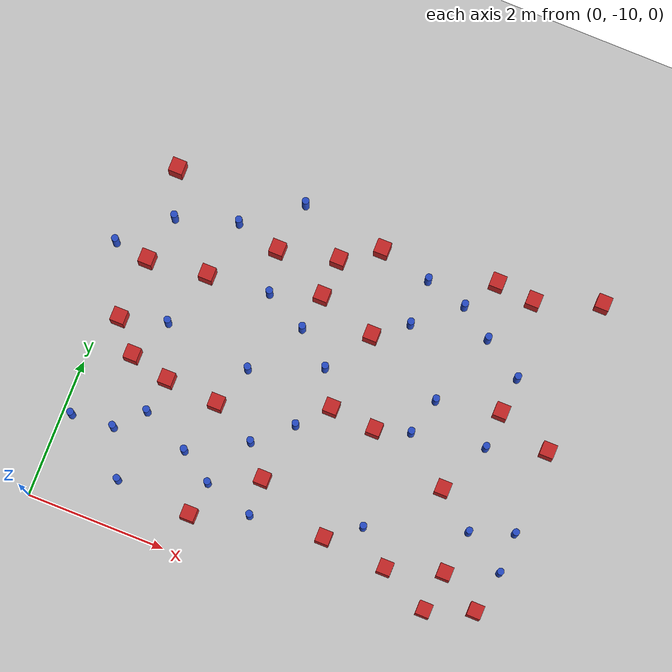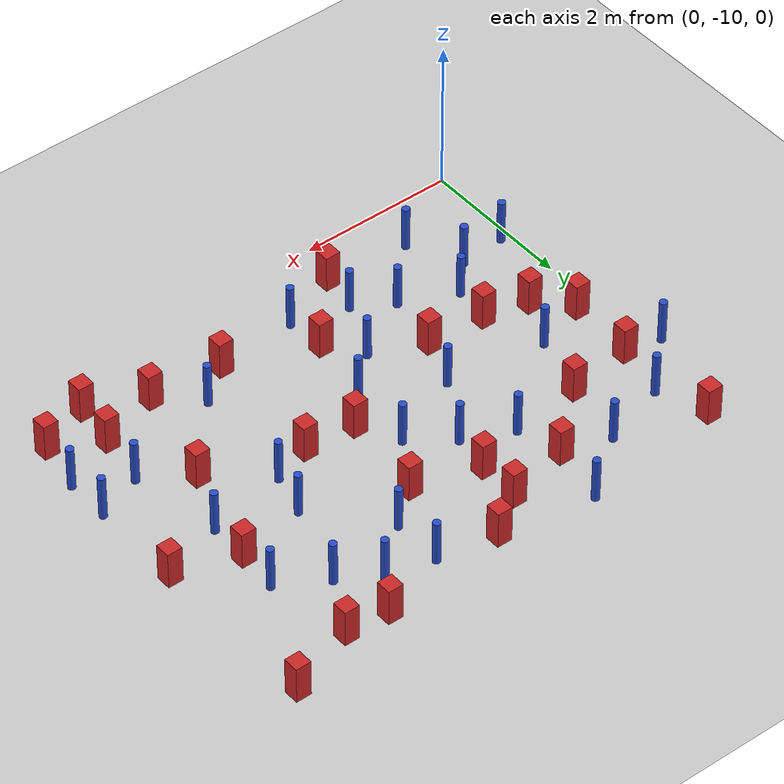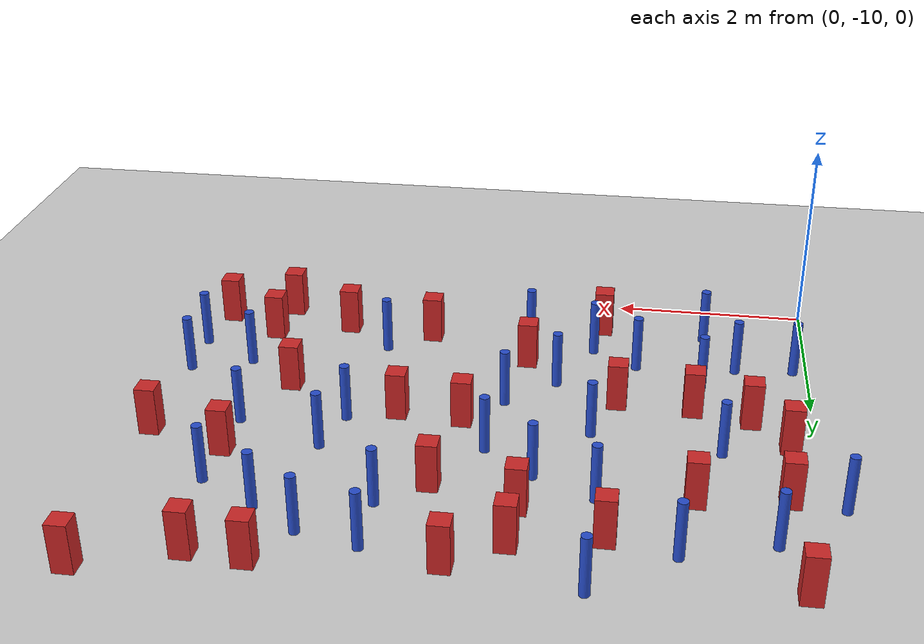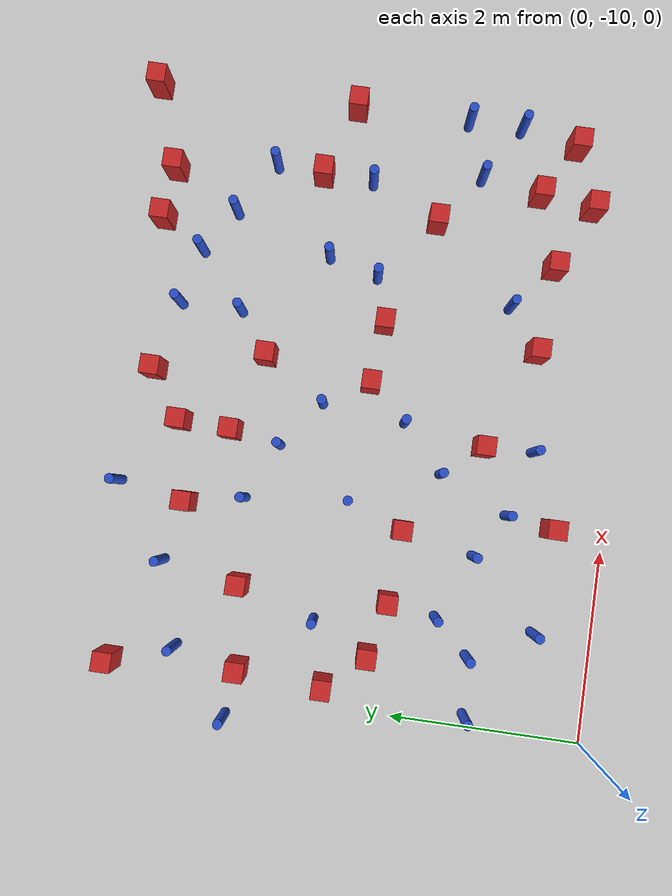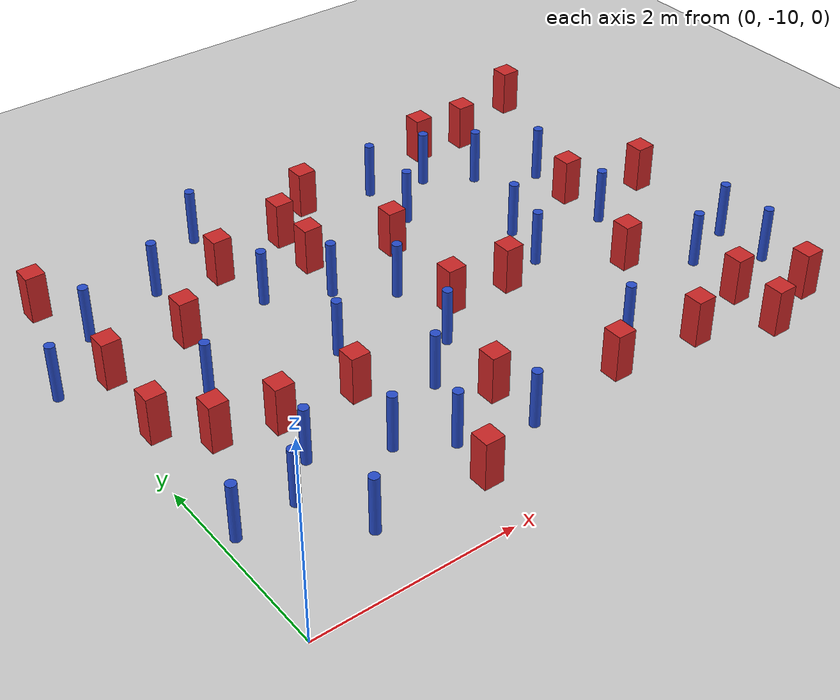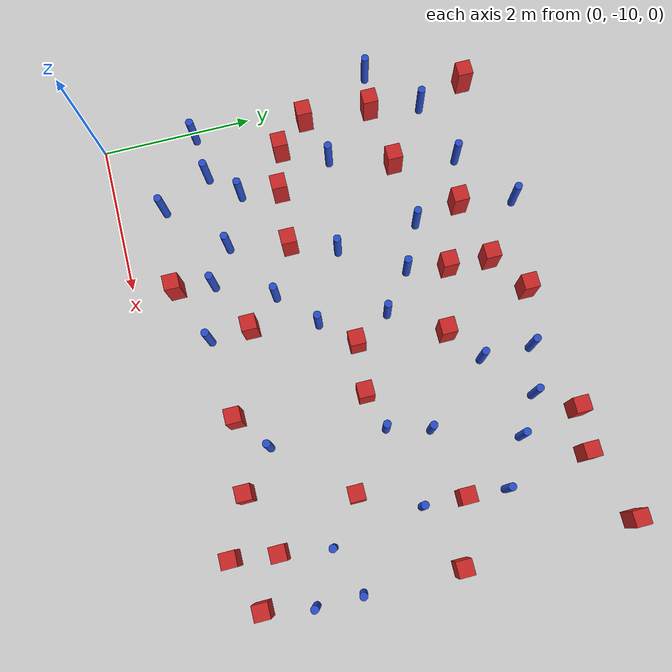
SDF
<sdf version="1.6">
 <world name="default">
  <model name="ground_plane">
   <static>1</static>
   <link name="link">
    <collision name="collision">
     <geometry><plane><normal>0 0 1</normal><size>100 100</size></plane></geometry>
     <surface><friction><ode><mu>100</mu><mu2>50</mu2></ode></friction></surface>
    </collision>
    <visual name="visual">
     <cast_shadows>0</cast_shadows>
     <geometry><plane><normal>0 0 1</normal><size>100 100</size></plane></geometry>
     <material>
      <ambient>1.0 1.0 1.0 1.0</ambient>
      <diffuse>0.8 0.8 0.8 1.0</diffuse>
      <specular>0.01 0.01 0.01 1.000000</specular>
     </material>
    </visual>
   </link>
  </model>
  <model name="pole_obstacle2">
   <static>true</static>
   <pose>6.45418464428 -8.57963363264 -9.47619616065e-06 5.49618799737e-07 2.36310414065e-07 -1.55090534796e-07</pose>
   <link name="link">
    <pose>0 0 0.3 0 -0 0</pose>
    <inertial>
     <mass>1</mass>
     <inertia><ixx>0.145833</ixx><ixy>0</ixy><ixz>0</ixz><iyy>0.145833</iyy><iyz>0</iyz><izz>0.125</izz></inertia>
    </inertial>
    <collision name="collision">
     <geometry><cylinder><radius>0.05</radius><length>.6</length></cylinder></geometry>
    </collision>
    <visual name="visual">
     <geometry><cylinder><radius>0.05</radius><length>.6</length></cylinder></geometry>
     <material>
      <script><name>Gazebo/Blue</name><uri>file://media/materials/scripts/gazebo.material</uri></script>
     </material>
    </visual>
   </link>
  </model>
  <model name="pole_obstacle6">
   <static>true</static>
   <pose>5.68251448427 -5.98446094993 -9.47619616065e-06 5.49618799737e-07 2.36310414037e-07 -1.55090534814e-07</pose>
   <link name="link">
    <pose>0 0 0.3 0 -0 0</pose>
    <inertial>
     <mass>1</mass>
     <inertia><ixx>0.145833</ixx><ixy>0</ixy><ixz>0</ixz><iyy>0.145833</iyy><iyz>0</iyz><izz>0.125</izz></inertia>
    </inertial>
    <collision name="collision">
     <geometry><cylinder><radius>0.05</radius><length>.6</length></cylinder></geometry>
    </collision>
    <visual name="visual">
     <geometry><cylinder><radius>0.05</radius><length>.6</length></cylinder></geometry>
     <material>
      <script><name>Gazebo/Blue</name><uri>file://media/materials/scripts/gazebo.material</uri></script>
     </material>
    </visual>
   </link>
  </model>
  <model name="square_post_obstacle14">
   <static>true</static>
   <pose>0.612522128558 -7.66524894821 -6.11067671241e-07 -5.50515727128e-06 -8.79689657224e-07 2.37013304536e-05</pose>
   <link name="link">
    <pose>0 0 0.25 0 -0 0</pose>
    <inertial>
     <mass>100</mass>
     <inertia>
      <ixx>0.166667</ixx>
      <ixy>0</ixy>
      <ixz>0</ixz>
      <iyy>0.166667</iyy>
      <iyz>0</iyz>
      <izz>0.166667</izz>
     </inertia>
    </inertial>
    <collision name="collision"><geometry><box><size>.2 .2 .5</size></box></geometry></collision>
    <visual name="visual">
     <geometry><box><size>.2 .2 .5</size></box></geometry>
     <material>
      <script><name>Gazebo/Red</name><uri>file://media/materials/scripts/gazebo.material</uri></script>
     </material>
    </visual>
   </link>
  </model>
  <model name="square_post_obstacle19">
   <static>true</static>
   <pose>1.92925214817 -5.55344616213 -6.11067671241e-07 -5.50515727128e-06 -8.79689657224e-07 2.37013304536e-05</pose>
   <link name="link">
    <pose>0 0 0.25 0 -0 0</pose>
    <inertial>
     <mass>100</mass>
     <inertia>
      <ixx>0.166667</ixx>
      <ixy>0</ixy>
      <ixz>0</ixz>
      <iyy>0.166667</iyy>
      <iyz>0</iyz>
      <izz>0.166667</izz>
     </inertia>
    </inertial>
    <collision name="collision"><geometry><box><size>.2 .2 .5</size></box></geometry></collision>
    <visual name="visual">
     <geometry><box><size>.2 .2 .5</size></box></geometry>
     <material>
      <script><name>Gazebo/Red</name><uri>file://media/materials/scripts/gazebo.material</uri></script>
     </material>
    </visual>
   </link>
  </model>
  <model name="square_post_obstacle23">
   <static>true</static>
   <pose>5.64936463588 -6.50192916926 -6.11067671241e-07 -5.50515727128e-06 -8.79689657224e-07 2.37013304536e-05</pose>
   <link name="link">
    <pose>0 0 0.25 0 -0 0</pose>
    <inertial>
     <mass>100</mass>
     <inertia>
      <ixx>0.166667</ixx>
      <ixy>0</ixy>
      <ixz>0</ixz>
      <iyy>0.166667</iyy>
      <iyz>0</iyz>
      <izz>0.166667</izz>
     </inertia>
    </inertial>
    <collision name="collision"><geometry><box><size>.2 .2 .5</size></box></geometry></collision>
    <visual name="visual">
     <geometry><box><size>.2 .2 .5</size></box></geometry>
     <material>
      <script><name>Gazebo/Red</name><uri>file://media/materials/scripts/gazebo.material</uri></script>
     </material>
    </visual>
   </link>
  </model>
  <model name="square_post_obstacle28">
   <static>true</static>
   <pose>2.74377445366 -5.92139741911 -6.11067671241e-07 -5.50515727128e-06 -8.79689657224e-07 2.37013304536e-05</pose>
   <link name="link">
    <pose>0 0 0.25 0 -0 0</pose>
    <inertial>
     <mass>100</mass>
     <inertia>
      <ixx>0.166667</ixx>
      <ixy>0</ixy>
      <ixz>0</ixz>
      <iyy>0.166667</iyy>
      <iyz>0</iyz>
      <izz>0.166667</izz>
     </inertia>
    </inertial>
    <collision name="collision"><geometry><box><size>.2 .2 .5</size></box></geometry></collision>
    <visual name="visual">
     <geometry><box><size>.2 .2 .5</size></box></geometry>
     <material>
      <script><name>Gazebo/Red</name><uri>file://media/materials/scripts/gazebo.material</uri></script>
     </material>
    </visual>
   </link>
  </model>
  <model name="square_post_obstacle31">
   <static>true</static>
   <pose>0.214404566164 -5.01702998632 -6.11067671241e-07 -5.50515727128e-06 -8.79689657224e-07 2.37013304536e-05</pose>
   <link name="link">
    <pose>0 0 0.25 0 -0 0</pose>
    <inertial>
     <mass>100</mass>
     <inertia>
      <ixx>0.166667</ixx>
      <ixy>0</ixy>
      <ixz>0</ixz>
      <iyy>0.166667</iyy>
      <iyz>0</iyz>
      <izz>0.166667</izz>
     </inertia>
    </inertial>
    <collision name="collision"><geometry><box><size>.2 .2 .5</size></box></geometry></collision>
    <visual name="visual">
     <geometry><box><size>.2 .2 .5</size></box></geometry>
     <material>
      <script><name>Gazebo/Red</name><uri>file://media/materials/scripts/gazebo.material</uri></script>
     </material>
    </visual>
   </link>
  </model>
  <model name="pole_obstacle22">
   <static>true</static>
   <pose>4.46964555666 -8.69715940294 -9.47619616065e-06 5.49618799737e-07 2.36310414065e-07 -1.55090534796e-07</pose>
   <link name="link">
    <pose>0 0 0.3 0 -0 0</pose>
    <inertial>
     <mass>1</mass>
     <inertia><ixx>0.145833</ixx><ixy>0</ixy><ixz>0</ixz><iyy>0.145833</iyy><iyz>0</iyz><izz>0.125</izz></inertia>
    </inertial>
    <collision name="collision">
     <geometry><cylinder><radius>0.05</radius><length>.6</length></cylinder></geometry>
    </collision>
    <visual name="visual">
     <geometry><cylinder><radius>0.05</radius><length>.6</length></cylinder></geometry>
     <material>
      <script><name>Gazebo/Blue</name><uri>file://media/materials/scripts/gazebo.material</uri></script>
     </material>
    </visual>
   </link>
  </model>
  <model name="pole_obstacle23">
   <static>true</static>
   <pose>2.24789081192 -8.9329276826 -9.4761961606e-06 5.49618799729e-07 2.36310414e-07 -1.55090534824e-07</pose>
   <link name="link">
    <pose>0 0 0.3 0 -0 0</pose>
    <inertial>
     <mass>1</mass>
     <inertia><ixx>0.145833</ixx><ixy>0</ixy><ixz>0</ixz><iyy>0.145833</iyy><iyz>0</iyz><izz>0.125</izz></inertia>
    </inertial>
    <collision name="collision">
     <geometry><cylinder><radius>0.05</radius><length>.6</length></cylinder></geometry>
    </collision>
    <visual name="visual">
     <geometry><cylinder><radius>0.05</radius><length>.6</length></cylinder></geometry>
     <material>
      <script><name>Gazebo/Blue</name><uri>file://media/materials/scripts/gazebo.material</uri></script>
     </material>
    </visual>
   </link>
  </model>
  <model name="pole_obstacle24">
   <static>true</static>
   <pose>3.15638530572 -6.84293150501 -9.47619616065e-06 5.49618799738e-07 2.3631041406e-07 -1.55090534801e-07</pose>
   <link name="link">
    <pose>0 0 0.3 0 -0 0</pose>
    <inertial>
     <mass>1</mass>
     <inertia><ixx>0.145833</ixx><ixy>0</ixy><ixz>0</ixz><iyy>0.145833</iyy><iyz>0</iyz><izz>0.125</izz></inertia>
    </inertial>
    <collision name="collision">
     <geometry><cylinder><radius>0.05</radius><length>.6</length></cylinder></geometry>
    </collision>
    <visual name="visual">
     <geometry><cylinder><radius>0.05</radius><length>.6</length></cylinder></geometry>
     <material>
      <script><name>Gazebo/Blue</name><uri>file://media/materials/scripts/gazebo.material</uri></script>
     </material>
    </visual>
   </link>
  </model>
  <model name="pole_obstacle38">
   <static>true</static>
   <pose>2.58527402147 -8.1850084617 -9.4761961606e-06 5.49618799729e-07 2.36310414e-07 -1.55090534824e-07</pose>
   <link name="link">
    <pose>0 0 0.3 0 -0 0</pose>
    <inertial>
     <mass>1</mass>
     <inertia><ixx>0.145833</ixx><ixy>0</ixy><ixz>0</ixz><iyy>0.145833</iyy><iyz>0</iyz><izz>0.125</izz></inertia>
    </inertial>
    <collision name="collision">
     <geometry><cylinder><radius>0.05</radius><length>.6</length></cylinder></geometry>
    </collision>
    <visual name="visual">
     <geometry><cylinder><radius>0.05</radius><length>.6</length></cylinder></geometry>
     <material>
      <script><name>Gazebo/Blue</name><uri>file://media/materials/scripts/gazebo.material</uri></script>
     </material>
    </visual>
   </link>
  </model>
  <model name="square_post_obstacle38">
   <static>true</static>
   <pose>2.76878945999 -5.36571575209 -6.11067671241e-07 -5.50515727128e-06 -8.79689657224e-07 2.37013304536e-05</pose>
   <link name="link">
    <pose>0 0 0.25 0 -0 0</pose>
    <inertial>
     <mass>100</mass>
     <inertia>
      <ixx>0.166667</ixx>
      <ixy>0</ixy>
      <ixz>0</ixz>
      <iyy>0.166667</iyy>
      <iyz>0</iyz>
      <izz>0.166667</izz>
     </inertia>
    </inertial>
    <collision name="collision"><geometry><box><size>.2 .2 .5</size></box></geometry></collision>
    <visual name="visual">
     <geometry><box><size>.2 .2 .5</size></box></geometry>
     <material>
      <script><name>Gazebo/Red</name><uri>file://media/materials/scripts/gazebo.material</uri></script>
     </material>
    </visual>
   </link>
  </model>
  <model name="square_post_obstacle40">
   <static>true</static>
   <pose>4.96021447103 -9.10993174928 -6.11067671241e-07 -5.50515727128e-06 -8.79689657224e-07 2.37013304536e-05</pose>
   <link name="link">
    <pose>0 0 0.25 0 -0 0</pose>
    <inertial>
     <mass>100</mass>
     <inertia>
      <ixx>0.166667</ixx>
      <ixy>0</ixy>
      <ixz>0</ixz>
      <iyy>0.166667</iyy>
      <iyz>0</iyz>
      <izz>0.166667</izz>
     </inertia>
    </inertial>
    <collision name="collision"><geometry><box><size>.2 .2 .5</size></box></geometry></collision>
    <visual name="visual">
     <geometry><box><size>.2 .2 .5</size></box></geometry>
     <material>
      <script><name>Gazebo/Red</name><uri>file://media/materials/scripts/gazebo.material</uri></script>
     </material>
    </visual>
   </link>
  </model>
  <model name="square_post_obstacle41">
   <static>true</static>
   <pose>3.58517775627 -6.17607427658 -6.11067671241e-07 -5.50515727128e-06 -8.79689657224e-07 2.37013304536e-05</pose>
   <link name="link">
    <pose>0 0 0.25 0 -0 0</pose>
    <inertial>
     <mass>100</mass>
     <inertia>
      <ixx>0.166667</ixx>
      <ixy>0</ixy>
      <ixz>0</ixz>
      <iyy>0.166667</iyy>
      <iyz>0</iyz>
      <izz>0.166667</izz>
     </inertia>
    </inertial>
    <collision name="collision"><geometry><box><size>.2 .2 .5</size></box></geometry></collision>
    <visual name="visual">
     <geometry><box><size>.2 .2 .5</size></box></geometry>
     <material>
      <script><name>Gazebo/Red</name><uri>file://media/materials/scripts/gazebo.material</uri></script>
     </material>
    </visual>
   </link>
  </model>
  <model name="pole_obstacle45">
   <static>true</static>
   <pose>4.02961745471 -5.17266082461 -9.47619616065e-06 5.49618799737e-07 2.36310414037e-07 -1.55090534814e-07</pose>
   <link name="link">
    <pose>0 0 0.3 0 -0 0</pose>
    <inertial>
     <mass>1</mass>
     <inertia><ixx>0.145833</ixx><ixy>0</ixy><ixz>0</ixz><iyy>0.145833</iyy><iyz>0</iyz><izz>0.125</izz></inertia>
    </inertial>
    <collision name="collision">
     <geometry><cylinder><radius>0.05</radius><length>.6</length></cylinder></geometry>
    </collision>
    <visual name="visual">
     <geometry><cylinder><radius>0.05</radius><length>.6</length></cylinder></geometry>
     <material>
      <script><name>Gazebo/Blue</name><uri>file://media/materials/scripts/gazebo.material</uri></script>
     </material>
    </visual>
   </link>
  </model>
  <model name="pole_obstacle46">
   <static>true</static>
   <pose>0.898720565216 -7.0665348535 -9.47619616065e-06 5.49618799737e-07 2.36310414065e-07 -1.55090534796e-07</pose>
   <link name="link">
    <pose>0 0 0.3 0 -0 0</pose>
    <inertial>
     <mass>1</mass>
     <inertia><ixx>0.145833</ixx><ixy>0</ixy><ixz>0</ixz><iyy>0.145833</iyy><iyz>0</iyz><izz>0.125</izz></inertia>
    </inertial>
    <collision name="collision">
     <geometry><cylinder><radius>0.05</radius><length>.6</length></cylinder></geometry>
    </collision>
    <visual name="visual">
     <geometry><cylinder><radius>0.05</radius><length>.6</length></cylinder></geometry>
     <material>
      <script><name>Gazebo/Blue</name><uri>file://media/materials/scripts/gazebo.material</uri></script>
     </material>
    </visual>
   </link>
  </model>
  <model name="pole_obstacle50">
   <static>true</static>
   <pose>2.65635538566 -6.44959223863 -9.47619616065e-06 5.49618799738e-07 2.3631041406e-07 -1.55090534801e-07</pose>
   <link name="link">
    <pose>0 0 0.3 0 -0 0</pose>
    <inertial>
     <mass>1</mass>
     <inertia><ixx>0.145833</ixx><ixy>0</ixy><ixz>0</ixz><iyy>0.145833</iyy><iyz>0</iyz><izz>0.125</izz></inertia>
    </inertial>
    <collision name="collision">
     <geometry><cylinder><radius>0.05</radius><length>.6</length></cylinder></geometry>
    </collision>
    <visual name="visual">
     <geometry><cylinder><radius>0.05</radius><length>.6</length></cylinder></geometry>
     <material>
      <script><name>Gazebo/Blue</name><uri>file://media/materials/scripts/gazebo.material</uri></script>
     </material>
    </visual>
   </link>
  </model>
  <model name="pole_obstacle52">
   <static>true</static>
   <pose>2.05153171338 -6.16215072299 -9.47619616065e-06 5.49618799738e-07 2.3631041406e-07 -1.55090534801e-07</pose>
   <link name="link">
    <pose>0 0 0.3 0 -0 0</pose>
    <inertial>
     <mass>1</mass>
     <inertia><ixx>0.145833</ixx><ixy>0</ixy><ixz>0</ixz><iyy>0.145833</iyy><iyz>0</iyz><izz>0.125</izz></inertia>
    </inertial>
    <collision name="collision">
     <geometry><cylinder><radius>0.05</radius><length>.6</length></cylinder></geometry>
    </collision>
    <visual name="visual">
     <geometry><cylinder><radius>0.05</radius><length>.6</length></cylinder></geometry>
     <material>
      <script><name>Gazebo/Blue</name><uri>file://media/materials/scripts/gazebo.material</uri></script>
     </material>
    </visual>
   </link>
  </model>
  <model name="pole_obstacle60">
   <static>true</static>
   <pose>0.742670746683 -8.69889427269 -9.47619616065e-06 5.49618799737e-07 2.36310414038e-07 -1.55090534813e-07</pose>
   <link name="link">
    <pose>0 0 0.3 0 -0 0</pose>
    <inertial>
     <mass>1</mass>
     <inertia><ixx>0.145833</ixx><ixy>0</ixy><ixz>0</ixz><iyy>0.145833</iyy><iyz>0</iyz><izz>0.125</izz></inertia>
    </inertial>
    <collision name="collision">
     <geometry><cylinder><radius>0.05</radius><length>.6</length></cylinder></geometry>
    </collision>
    <visual name="visual">
     <geometry><cylinder><radius>0.05</radius><length>.6</length></cylinder></geometry>
     <material>
      <script><name>Gazebo/Blue</name><uri>file://media/materials/scripts/gazebo.material</uri></script>
     </material>
    </visual>
   </link>
  </model>
  <model name="square_post_obstacle64">
   <static>true</static>
   <pose>5.49461611093 -4.89949727996 -6.11067671241e-07 -5.50515727128e-06 -8.79689657224e-07 2.37013304536e-05</pose>
   <link name="link">
    <pose>0 0 0.25 0 -0 0</pose>
    <inertial>
     <mass>100</mass>
     <inertia>
      <ixx>0.166667</ixx>
      <ixy>0</ixy>
      <ixz>0</ixz>
      <iyy>0.166667</iyy>
      <iyz>0</iyz>
      <izz>0.166667</izz>
     </inertia>
    </inertial>
    <collision name="collision"><geometry><box><size>.2 .2 .5</size></box></geometry></collision>
    <visual name="visual">
     <geometry><box><size>.2 .2 .5</size></box></geometry>
     <material>
      <script><name>Gazebo/Red</name><uri>file://media/materials/scripts/gazebo.material</uri></script>
     </material>
    </visual>
   </link>
  </model>
  <model name="square_post_obstacle69">
   <static>true</static>
   <pose>4.1081582225 -7.37887060514 -6.11067671241e-07 -5.50515727128e-06 -8.79689657224e-07 2.37013304536e-05</pose>
   <link name="link">
    <pose>0 0 0.25 0 -0 0</pose>
    <inertial>
     <mass>100</mass>
     <inertia>
      <ixx>0.166667</ixx>
      <ixy>0</ixy>
      <ixz>0</ixz>
      <iyy>0.166667</iyy>
      <iyz>0</iyz>
      <izz>0.166667</izz>
     </inertia>
    </inertial>
    <collision name="collision"><geometry><box><size>.2 .2 .5</size></box></geometry></collision>
    <visual name="visual">
     <geometry><box><size>.2 .2 .5</size></box></geometry>
     <material>
      <script><name>Gazebo/Red</name><uri>file://media/materials/scripts/gazebo.material</uri></script>
     </material>
    </visual>
   </link>
  </model>
  <model name="square_post_obstacle72">
   <static>true</static>
   <pose>3.27908935934 -5.01027246465 -6.11067671241e-07 -5.50515727128e-06 -8.79689657224e-07 2.37013304536e-05</pose>
   <link name="link">
    <pose>0 0 0.25 0 -0 0</pose>
    <inertial>
     <mass>100</mass>
     <inertia>
      <ixx>0.166667</ixx>
      <ixy>0</ixy>
      <ixz>0</ixz>
      <iyy>0.166667</iyy>
      <iyz>0</iyz>
      <izz>0.166667</izz>
     </inertia>
    </inertial>
    <collision name="collision"><geometry><box><size>.2 .2 .5</size></box></geometry></collision>
    <visual name="visual">
     <geometry><box><size>.2 .2 .5</size></box></geometry>
     <material>
      <script><name>Gazebo/Red</name><uri>file://media/materials/scripts/gazebo.material</uri></script>
     </material>
    </visual>
   </link>
  </model>
  <model name="square_post_obstacle73">
   <static>true</static>
   <pose>4.02014681109 -9.03444627325 -6.11067671241e-07 -5.50515727128e-06 -8.79689657224e-07 2.37013304536e-05</pose>
   <link name="link">
    <pose>0 0 0.25 0 -0 0</pose>
    <inertial>
     <mass>100</mass>
     <inertia>
      <ixx>0.166667</ixx>
      <ixy>0</ixy>
      <ixz>0</ixz>
      <iyy>0.166667</iyy>
      <iyz>0</iyz>
      <izz>0.166667</izz>
     </inertia>
    </inertial>
    <collision name="collision"><geometry><box><size>.2 .2 .5</size></box></geometry></collision>
    <visual name="visual">
     <geometry><box><size>.2 .2 .5</size></box></geometry>
     <material>
      <script><name>Gazebo/Red</name><uri>file://media/materials/scripts/gazebo.material</uri></script>
     </material>
    </visual>
   </link>
  </model>
  <model name="square_post_obstacle76">
   <static>true</static>
   <pose>1.18384215802 -7.80622372472 -6.11067671241e-07 -5.50515727128e-06 -8.79689657224e-07 2.37013304536e-05</pose>
   <link name="link">
    <pose>0 0 0.25 0 -0 0</pose>
    <inertial>
     <mass>100</mass>
     <inertia>
      <ixx>0.166667</ixx>
      <ixy>0</ixy>
      <ixz>0</ixz>
      <iyy>0.166667</iyy>
      <iyz>0</iyz>
      <izz>0.166667</izz>
     </inertia>
    </inertial>
    <collision name="collision"><geometry><box><size>.2 .2 .5</size></box></geometry></collision>
    <visual name="visual">
     <geometry><box><size>.2 .2 .5</size></box></geometry>
     <material>
      <script><name>Gazebo/Red</name><uri>file://media/materials/scripts/gazebo.material</uri></script>
     </material>
    </visual>
   </link>
  </model>
  <model name="pole_obstacle86">
   <static>true</static>
   <pose>3.07432196288 -7.73552331958 -9.47619616065e-06 5.49618799738e-07 2.3631041406e-07 -1.55090534801e-07</pose>
   <link name="link">
    <pose>0 0 0.3 0 -0 0</pose>
    <inertial>
     <mass>1</mass>
     <inertia><ixx>0.145833</ixx><ixy>0</ixy><ixz>0</ixz><iyy>0.145833</iyy><iyz>0</iyz><izz>0.125</izz></inertia>
    </inertial>
    <collision name="collision">
     <geometry><cylinder><radius>0.05</radius><length>.6</length></cylinder></geometry>
    </collision>
    <visual name="visual">
     <geometry><cylinder><radius>0.05</radius><length>.6</length></cylinder></geometry>
     <material>
      <script><name>Gazebo/Blue</name><uri>file://media/materials/scripts/gazebo.material</uri></script>
     </material>
    </visual>
   </link>
  </model>
  <model name="pole_obstacle94">
   <static>true</static>
   <pose>2.16821305491 -7.25598035795 -9.47619616065e-06 5.49618799738e-07 2.3631041406e-07 -1.55090534801e-07</pose>
   <link name="link">
    <pose>0 0 0.3 0 -0 0</pose>
    <inertial>
     <mass>1</mass>
     <inertia><ixx>0.145833</ixx><ixy>0</ixy><ixz>0</ixz><iyy>0.145833</iyy><iyz>0</iyz><izz>0.125</izz></inertia>
    </inertial>
    <collision name="collision">
     <geometry><cylinder><radius>0.05</radius><length>.6</length></cylinder></geometry>
    </collision>
    <visual name="visual">
     <geometry><cylinder><radius>0.05</radius><length>.6</length></cylinder></geometry>
     <material>
      <script><name>Gazebo/Blue</name><uri>file://media/materials/scripts/gazebo.material</uri></script>
     </material>
    </visual>
   </link>
  </model>
  <model name="square_post_obstacle83">
   <static>true</static>
   <pose>2.92922506716 -8.59634781807 -6.11067671241e-07 -5.50515727128e-06 -8.79689657224e-07 2.37013304536e-05</pose>
   <link name="link">
    <pose>0 0 0.25 0 -0 0</pose>
    <inertial>
     <mass>100</mass>
     <inertia>
      <ixx>0.166667</ixx>
      <ixy>0</ixy>
      <ixz>0</ixz>
      <iyy>0.166667</iyy>
      <iyz>0</iyz>
      <izz>0.166667</izz>
     </inertia>
    </inertial>
    <collision name="collision"><geometry><box><size>.2 .2 .5</size></box></geometry></collision>
    <visual name="visual">
     <geometry><box><size>.2 .2 .5</size></box></geometry>
     <material>
      <script><name>Gazebo/Red</name><uri>file://media/materials/scripts/gazebo.material</uri></script>
     </material>
    </visual>
   </link>
  </model>
  <model name="square_post_obstacle97">
   <static>true</static>
   <pose>1.15421913061 -6.24098601957 -6.11067671241e-07 -5.50515727128e-06 -8.79689657224e-07 2.37013304536e-05</pose>
   <link name="link">
    <pose>0 0 0.25 0 -0 0</pose>
    <inertial>
     <mass>100</mass>
     <inertia>
      <ixx>0.166667</ixx>
      <ixy>0</ixy>
      <ixz>0</ixz>
      <iyy>0.166667</iyy>
      <iyz>0</iyz>
      <izz>0.166667</izz>
     </inertia>
    </inertial>
    <collision name="collision"><geometry><box><size>.2 .2 .5</size></box></geometry></collision>
    <visual name="visual">
     <geometry><box><size>.2 .2 .5</size></box></geometry>
     <material>
      <script><name>Gazebo/Red</name><uri>file://media/materials/scripts/gazebo.material</uri></script>
     </material>
    </visual>
   </link>
  </model>
  <model name="pole_obstacle113">
   <static>true</static>
   <pose>4.74816745061 -6.6927134004 -9.47619616065e-06 5.49618799737e-07 2.36310414037e-07 -1.55090534814e-07</pose>
   <link name="link">
    <pose>0 0 0.3 0 -0 0</pose>
    <inertial>
     <mass>1</mass>
     <inertia><ixx>0.145833</ixx><ixy>0</ixy><ixz>0</ixz><iyy>0.145833</iyy><iyz>0</iyz><izz>0.125</izz></inertia>
    </inertial>
    <collision name="collision">
     <geometry><cylinder><radius>0.05</radius><length>.6</length></cylinder></geometry>
    </collision>
    <visual name="visual">
     <geometry><cylinder><radius>0.05</radius><length>.6</length></cylinder></geometry>
     <material>
      <script><name>Gazebo/Blue</name><uri>file://media/materials/scripts/gazebo.material</uri></script>
     </material>
    </visual>
   </link>
  </model>
  <model name="pole_obstacle114">
   <static>true</static>
   <pose>2.05266685242 -4.82102573599 -9.47619616065e-06 5.49618799738e-07 2.3631041406e-07 -1.55090534801e-07</pose>
   <link name="link">
    <pose>0 0 0.3 0 -0 0</pose>
    <inertial>
     <mass>1</mass>
     <inertia><ixx>0.145833</ixx><ixy>0</ixy><ixz>0</ixz><iyy>0.145833</iyy><iyz>0</iyz><izz>0.125</izz></inertia>
    </inertial>
    <collision name="collision">
     <geometry><cylinder><radius>0.05</radius><length>.6</length></cylinder></geometry>
    </collision>
    <visual name="visual">
     <geometry><cylinder><radius>0.05</radius><length>.6</length></cylinder></geometry>
     <material>
      <script><name>Gazebo/Blue</name><uri>file://media/materials/scripts/gazebo.material</uri></script>
     </material>
    </visual>
   </link>
  </model>
  <model name="pole_obstacle117">
   <static>true</static>
   <pose>6.45182854349 -7.9979092784 -9.47619616065e-06 5.49618799738e-07 2.36310414051e-07 -1.55090534804e-07</pose>
   <link name="link">
    <pose>0 0 0.3 0 -0 0</pose>
    <inertial>
     <mass>1</mass>
     <inertia><ixx>0.145833</ixx><ixy>0</ixy><ixz>0</ixz><iyy>0.145833</iyy><iyz>0</iyz><izz>0.125</izz></inertia>
    </inertial>
    <collision name="collision">
     <geometry><cylinder><radius>0.05</radius><length>.6</length></cylinder></geometry>
    </collision>
    <visual name="visual">
     <geometry><cylinder><radius>0.05</radius><length>.6</length></cylinder></geometry>
     <material>
      <script><name>Gazebo/Blue</name><uri>file://media/materials/scripts/gazebo.material</uri></script>
     </material>
    </visual>
   </link>
  </model>
  <model name="square_post_obstacle106">
   <static>true</static>
   <pose>4.93627917969 -4.84932211249 -6.11067671241e-07 -5.50515727128e-06 -8.79689657224e-07 2.37013304536e-05</pose>
   <link name="link">
    <pose>0 0 0.25 0 -0 0</pose>
    <inertial>
     <mass>100</mass>
     <inertia>
      <ixx>0.166667</ixx>
      <ixy>0</ixy>
      <ixz>0</ixz>
      <iyy>0.166667</iyy>
      <iyz>0</iyz>
      <izz>0.166667</izz>
     </inertia>
    </inertial>
    <collision name="collision"><geometry><box><size>.2 .2 .5</size></box></geometry></collision>
    <visual name="visual">
     <geometry><box><size>.2 .2 .5</size></box></geometry>
     <material>
      <script><name>Gazebo/Red</name><uri>file://media/materials/scripts/gazebo.material</uri></script>
     </material>
    </visual>
   </link>
  </model>
  <model name="pole_obstacle122">
   <static>true</static>
   <pose>4.02950236783 -5.83286309846 -9.47619616065e-06 5.49618799737e-07 2.36310414037e-07 -1.55090534814e-07</pose>
   <link name="link">
    <pose>0 0 0.3 0 -0 0</pose>
    <inertial>
     <mass>1</mass>
     <inertia><ixx>0.145833</ixx><ixy>0</ixy><ixz>0</ixz><iyy>0.145833</iyy><iyz>0</iyz><izz>0.125</izz></inertia>
    </inertial>
    <collision name="collision">
     <geometry><cylinder><radius>0.05</radius><length>.6</length></cylinder></geometry>
    </collision>
    <visual name="visual">
     <geometry><cylinder><radius>0.05</radius><length>.6</length></cylinder></geometry>
     <material>
      <script><name>Gazebo/Blue</name><uri>file://media/materials/scripts/gazebo.material</uri></script>
     </material>
    </visual>
   </link>
  </model>
  <model name="pole_obstacle137">
   <static>true</static>
   <pose>0.138211797692 -8.74861774092 -9.47619616065e-06 5.49618799737e-07 2.36310414033e-07 -1.55090534817e-07</pose>
   <link name="link">
    <pose>0 0 0.3 0 -0 0</pose>
    <inertial>
     <mass>1</mass>
     <inertia><ixx>0.145833</ixx><ixy>0</ixy><ixz>0</ixz><iyy>0.145833</iyy><iyz>0</iyz><izz>0.125</izz></inertia>
    </inertial>
    <collision name="collision">
     <geometry><cylinder><radius>0.05</radius><length>.6</length></cylinder></geometry>
    </collision>
    <visual name="visual">
     <geometry><cylinder><radius>0.05</radius><length>.6</length></cylinder></geometry>
     <material>
      <script><name>Gazebo/Blue</name><uri>file://media/materials/scripts/gazebo.material</uri></script>
     </material>
    </visual>
   </link>
  </model>
  <model name="pole_obstacle138">
   <static>true</static>
   <pose>1.77937807514 -8.63655163577 -9.47619616065e-06 5.49618799737e-07 2.36310414046e-07 -1.55090534809e-07</pose>
   <link name="link">
    <pose>0 0 0.3 0 -0 0</pose>
    <inertial>
     <mass>1</mass>
     <inertia><ixx>0.145833</ixx><ixy>0</ixy><ixz>0</ixz><iyy>0.145833</iyy><iyz>0</iyz><izz>0.125</izz></inertia>
    </inertial>
    <collision name="collision">
     <geometry><cylinder><radius>0.05</radius><length>.6</length></cylinder></geometry>
    </collision>
    <visual name="visual">
     <geometry><cylinder><radius>0.05</radius><length>.6</length></cylinder></geometry>
     <material>
      <script><name>Gazebo/Blue</name><uri>file://media/materials/scripts/gazebo.material</uri></script>
     </material>
    </visual>
   </link>
  </model>
  <model name="pole_obstacle139">
   <static>true</static>
   <pose>5.84663716199 -8.21630657733 -9.47619616065e-06 5.49618799737e-07 2.36310414065e-07 -1.55090534796e-07</pose>
   <link name="link">
    <pose>0 0 0.3 0 -0 0</pose>
    <inertial>
     <mass>1</mass>
     <inertia><ixx>0.145833</ixx><ixy>0</ixy><ixz>0</ixz><iyy>0.145833</iyy><iyz>0</iyz><izz>0.125</izz></inertia>
    </inertial>
    <collision name="collision">
     <geometry><cylinder><radius>0.05</radius><length>.6</length></cylinder></geometry>
    </collision>
    <visual name="visual">
     <geometry><cylinder><radius>0.05</radius><length>.6</length></cylinder></geometry>
     <material>
      <script><name>Gazebo/Blue</name><uri>file://media/materials/scripts/gazebo.material</uri></script>
     </material>
    </visual>
   </link>
  </model>
  <model name="square_post_obstacle135">
   <static>true</static>
   <pose>5.67267400739 -9.4460937415 -6.11067671241e-07 -5.50515727128e-06 -8.79689657224e-07 2.37013304536e-05</pose>
   <link name="link">
    <pose>0 0 0.25 0 -0 0</pose>
    <inertial>
     <mass>100</mass>
     <inertia>
      <ixx>0.166667</ixx>
      <ixy>0</ixy>
      <ixz>0</ixz>
      <iyy>0.166667</iyy>
      <iyz>0</iyz>
      <izz>0.166667</izz>
     </inertia>
    </inertial>
    <collision name="collision"><geometry><box><size>.2 .2 .5</size></box></geometry></collision>
    <visual name="visual">
     <geometry><box><size>.2 .2 .5</size></box></geometry>
     <material>
      <script><name>Gazebo/Red</name><uri>file://media/materials/scripts/gazebo.material</uri></script>
     </material>
    </visual>
   </link>
  </model>
  <model name="square_post_obstacle139">
   <static>true</static>
   <pose>5.74683481186 -8.86420172058 -6.11067671241e-07 -5.50515727128e-06 -8.79689657224e-07 2.37013304536e-05</pose>
   <link name="link">
    <pose>0 0 0.25 0 -0 0</pose>
    <inertial>
     <mass>100</mass>
     <inertia>
      <ixx>0.166667</ixx>
      <ixy>0</ixy>
      <ixz>0</ixz>
      <iyy>0.166667</iyy>
      <iyz>0</iyz>
      <izz>0.166667</izz>
     </inertia>
    </inertial>
    <collision name="collision"><geometry><box><size>.2 .2 .5</size></box></geometry></collision>
    <visual name="visual">
     <geometry><box><size>.2 .2 .5</size></box></geometry>
     <material>
      <script><name>Gazebo/Red</name><uri>file://media/materials/scripts/gazebo.material</uri></script>
     </material>
    </visual>
   </link>
  </model>
  <model name="pole_obstacle154">
   <static>true</static>
   <pose>1.07502696387 -9.35516484893 -9.47619616065e-06 5.49618799737e-07 2.36310414046e-07 -1.55090534809e-07</pose>
   <link name="link">
    <pose>0 0 0.3 0 -0 0</pose>
    <inertial>
     <mass>1</mass>
     <inertia><ixx>0.145833</ixx><ixy>0</ixy><ixz>0</ixz><iyy>0.145833</iyy><iyz>0</iyz><izz>0.125</izz></inertia>
    </inertial>
    <collision name="collision">
     <geometry><cylinder><radius>0.05</radius><length>.6</length></cylinder></geometry>
    </collision>
    <visual name="visual">
     <geometry><cylinder><radius>0.05</radius><length>.6</length></cylinder></geometry>
     <material>
      <script><name>Gazebo/Blue</name><uri>file://media/materials/scripts/gazebo.material</uri></script>
     </material>
    </visual>
   </link>
  </model>
  <model name="square_post_obstacle146">
   <static>true</static>
   <pose>0.299668543682 -6.35462812157 -6.11067671241e-07 -5.50515727128e-06 -8.79689657224e-07 2.37013304536e-05</pose>
   <link name="link">
    <pose>0 0 0.25 0 -0 0</pose>
    <inertial>
     <mass>100</mass>
     <inertia>
      <ixx>0.166667</ixx>
      <ixy>0</ixy>
      <ixz>0</ixz>
      <iyy>0.166667</iyy>
      <iyz>0</iyz>
      <izz>0.166667</izz>
     </inertia>
    </inertial>
    <collision name="collision"><geometry><box><size>.2 .2 .5</size></box></geometry></collision>
    <visual name="visual">
     <geometry><box><size>.2 .2 .5</size></box></geometry>
     <material>
      <script><name>Gazebo/Red</name><uri>file://media/materials/scripts/gazebo.material</uri></script>
     </material>
    </visual>
   </link>
  </model>
  <model name="pole_obstacle163">
   <static>true</static>
   <pose>1.09724476334 -8.32490961293 -9.47619616065e-06 5.49618799737e-07 2.36310414046e-07 -1.55090534809e-07</pose>
   <link name="link">
    <pose>0 0 0.3 0 -0 0</pose>
    <inertial>
     <mass>1</mass>
     <inertia><ixx>0.145833</ixx><ixy>0</ixy><ixz>0</ixz><iyy>0.145833</iyy><iyz>0</iyz><izz>0.125</izz></inertia>
    </inertial>
    <collision name="collision">
     <geometry><cylinder><radius>0.05</radius><length>.6</length></cylinder></geometry>
    </collision>
    <visual name="visual">
     <geometry><cylinder><radius>0.05</radius><length>.6</length></cylinder></geometry>
     <material>
      <script><name>Gazebo/Blue</name><uri>file://media/materials/scripts/gazebo.material</uri></script>
     </material>
    </visual>
   </link>
  </model>
  <model name="pole_obstacle167">
   <static>true</static>
   <pose>5.1022409834 -5.62757914646 -9.47619616065e-06 5.49618799737e-07 2.36310414037e-07 -1.55090534814e-07</pose>
   <link name="link">
    <pose>0 0 0.3 0 -0 0</pose>
    <inertial>
     <mass>1</mass>
     <inertia><ixx>0.145833</ixx><ixy>0</ixy><ixz>0</ixz><iyy>0.145833</iyy><iyz>0</iyz><izz>0.125</izz></inertia>
    </inertial>
    <collision name="collision">
     <geometry><cylinder><radius>0.05</radius><length>.6</length></cylinder></geometry>
    </collision>
    <visual name="visual">
     <geometry><cylinder><radius>0.05</radius><length>.6</length></cylinder></geometry>
     <material>
      <script><name>Gazebo/Blue</name><uri>file://media/materials/scripts/gazebo.material</uri></script>
     </material>
    </visual>
   </link>
  </model>
  <model name="pole_obstacle170">
   <static>true</static>
   <pose>4.59822810456 -7.23428738571 -9.47619616065e-06 5.49618799737e-07 2.36310414037e-07 -1.55090534814e-07</pose>
   <link name="link">
    <pose>0 0 0.3 0 -0 0</pose>
    <inertial>
     <mass>1</mass>
     <inertia><ixx>0.145833</ixx><ixy>0</ixy><ixz>0</ixz><iyy>0.145833</iyy><iyz>0</iyz><izz>0.125</izz></inertia>
    </inertial>
    <collision name="collision">
     <geometry><cylinder><radius>0.05</radius><length>.6</length></cylinder></geometry>
    </collision>
    <visual name="visual">
     <geometry><cylinder><radius>0.05</radius><length>.6</length></cylinder></geometry>
     <material>
      <script><name>Gazebo/Blue</name><uri>file://media/materials/scripts/gazebo.material</uri></script>
     </material>
    </visual>
   </link>
  </model>
  <model name="pole_obstacle180">
   <static>true</static>
   <pose>-0.199266163198 -6.28721115496 -9.47619616065e-06 5.49618799738e-07 2.36310414064e-07 -1.55090534799e-07</pose>
   <link name="link">
    <pose>0 0 0.3 0 -0 0</pose>
    <inertial>
     <mass>1</mass>
     <inertia><ixx>0.145833</ixx><ixy>0</ixy><ixz>0</ixz><iyy>0.145833</iyy><iyz>0</iyz><izz>0.125</izz></inertia>
    </inertial>
    <collision name="collision">
     <geometry><cylinder><radius>0.05</radius><length>.6</length></cylinder></geometry>
    </collision>
    <visual name="visual">
     <geometry><cylinder><radius>0.05</radius><length>.6</length></cylinder></geometry>
     <material>
      <script><name>Gazebo/Blue</name><uri>file://media/materials/scripts/gazebo.material</uri></script>
     </material>
    </visual>
   </link>
  </model>
  <model name="square_post_obstacle181">
   <static>true</static>
   <pose>3.44584525283 -7.32297890291 -6.11067671241e-07 -5.50515727128e-06 -8.79689657224e-07 2.37013304536e-05</pose>
   <link name="link">
    <pose>0 0 0.25 0 -0 0</pose>
    <inertial>
     <mass>100</mass>
     <inertia>
      <ixx>0.166667</ixx>
      <ixy>0</ixy>
      <ixz>0</ixz>
      <iyy>0.166667</iyy>
      <iyz>0</iyz>
      <izz>0.166667</izz>
     </inertia>
    </inertial>
    <collision name="collision"><geometry><box><size>.2 .2 .5</size></box></geometry></collision>
    <visual name="visual">
     <geometry><box><size>.2 .2 .5</size></box></geometry>
     <material>
      <script><name>Gazebo/Red</name><uri>file://media/materials/scripts/gazebo.material</uri></script>
     </material>
    </visual>
   </link>
  </model>
  <model name="square_post_obstacle186">
   <static>true</static>
   <pose>6.33651434929 -9.19912020472 -6.11067671241e-07 -5.50515727128e-06 -8.79689657224e-07 2.37013304536e-05</pose>
   <link name="link">
    <pose>0 0 0.25 0 -0 0</pose>
    <inertial>
     <mass>100</mass>
     <inertia>
      <ixx>0.166667</ixx>
      <ixy>0</ixy>
      <ixz>0</ixz>
      <iyy>0.166667</iyy>
      <iyz>0</iyz>
      <izz>0.166667</izz>
     </inertia>
    </inertial>
    <collision name="collision"><geometry><box><size>.2 .2 .5</size></box></geometry></collision>
    <visual name="visual">
     <geometry><box><size>.2 .2 .5</size></box></geometry>
     <material>
      <script><name>Gazebo/Red</name><uri>file://media/materials/scripts/gazebo.material</uri></script>
     </material>
    </visual>
   </link>
  </model>
  <model name="square_post_obstacle188">
   <static>true</static>
   <pose>5.29439459602 -7.7934512541 -6.11067671241e-07 -5.50515727128e-06 -8.79689657224e-07 2.37013304536e-05</pose>
   <link name="link">
    <pose>0 0 0.25 0 -0 0</pose>
    <inertial>
     <mass>100</mass>
     <inertia>
      <ixx>0.166667</ixx>
      <ixy>0</ixy>
      <ixz>0</ixz>
      <iyy>0.166667</iyy>
      <iyz>0</iyz>
      <izz>0.166667</izz>
     </inertia>
    </inertial>
    <collision name="collision"><geometry><box><size>.2 .2 .5</size></box></geometry></collision>
    <visual name="visual">
     <geometry><box><size>.2 .2 .5</size></box></geometry>
     <material>
      <script><name>Gazebo/Red</name><uri>file://media/materials/scripts/gazebo.material</uri></script>
     </material>
    </visual>
   </link>
  </model>
  <model name="square_post_obstacle189">
   <static>true</static>
   <pose>1.94496734452 -7.85600384152 -6.11067671241e-07 -5.50515727128e-06 -8.79689657224e-07 2.37013304536e-05</pose>
   <link name="link">
    <pose>0 0 0.25 0 -0 0</pose>
    <inertial>
     <mass>100</mass>
     <inertia>
      <ixx>0.166667</ixx>
      <ixy>0</ixy>
      <ixz>0</ixz>
      <iyy>0.166667</iyy>
      <iyz>0</iyz>
      <izz>0.166667</izz>
     </inertia>
    </inertial>
    <collision name="collision"><geometry><box><size>.2 .2 .5</size></box></geometry></collision>
    <visual name="visual">
     <geometry><box><size>.2 .2 .5</size></box></geometry>
     <material>
      <script><name>Gazebo/Red</name><uri>file://media/materials/scripts/gazebo.material</uri></script>
     </material>
    </visual>
   </link>
  </model>
  <model name="square_post_obstacle192">
   <static>true</static>
   <pose>6.44895371961 -6.76859270269 -6.11067671241e-07 -5.50515727128e-06 -8.79689657224e-07 2.37013304536e-05</pose>
   <link name="link">
    <pose>0 0 0.25 0 -0 0</pose>
    <inertial>
     <mass>100</mass>
     <inertia>
      <ixx>0.166667</ixx>
      <ixy>0</ixy>
      <ixz>0</ixz>
      <iyy>0.166667</iyy>
      <iyz>0</iyz>
      <izz>0.166667</izz>
     </inertia>
    </inertial>
    <collision name="collision"><geometry><box><size>.2 .2 .5</size></box></geometry></collision>
    <visual name="visual">
     <geometry><box><size>.2 .2 .5</size></box></geometry>
     <material>
      <script><name>Gazebo/Red</name><uri>file://media/materials/scripts/gazebo.material</uri></script>
     </material>
    </visual>
   </link>
  </model>
  <model name="square_post_obstacle203">
   <static>true</static>
   <pose>0.24771199437 -7.25229579226 -6.11067671241e-07 -5.50515727128e-06 -8.79689657224e-07 2.37013304536e-05</pose>
   <link name="link">
    <pose>0 0 0.25 0 -0 0</pose>
    <inertial>
     <mass>100</mass>
     <inertia>
      <ixx>0.166667</ixx>
      <ixy>0</ixy>
      <ixz>0</ixz>
      <iyy>0.166667</iyy>
      <iyz>0</iyz>
      <izz>0.166667</izz>
     </inertia>
    </inertial>
    <collision name="collision"><geometry><box><size>.2 .2 .5</size></box></geometry></collision>
    <visual name="visual">
     <geometry><box><size>.2 .2 .5</size></box></geometry>
     <material>
      <script><name>Gazebo/Red</name><uri>file://media/materials/scripts/gazebo.material</uri></script>
     </material>
    </visual>
   </link>
  </model>
  <model name="pole_obstacle201">
   <static>true</static>
   <pose>2.95291371757 -9.13231892397 -9.4761961606e-06 5.49618799729e-07 2.36310414e-07 -1.55090534824e-07</pose>
   <link name="link">
    <pose>0 0 0.3 0 -0 0</pose>
    <inertial>
     <mass>1</mass>
     <inertia><ixx>0.145833</ixx><ixy>0</ixy><ixz>0</ixz><iyy>0.145833</iyy><iyz>0</iyz><izz>0.125</izz></inertia>
    </inertial>
    <collision name="collision">
     <geometry><cylinder><radius>0.05</radius><length>.6</length></cylinder></geometry>
    </collision>
    <visual name="visual">
     <geometry><cylinder><radius>0.05</radius><length>.6</length></cylinder></geometry>
     <material>
      <script><name>Gazebo/Blue</name><uri>file://media/materials/scripts/gazebo.material</uri></script>
     </material>
    </visual>
   </link>
  </model>
  <model name="pole_obstacle204">
   <static>true</static>
   <pose>5.63390459657 -7.04398005898 -9.47619616065e-06 5.49618799737e-07 2.36310414037e-07 -1.55090534814e-07</pose>
   <link name="link">
    <pose>0 0 0.3 0 -0 0</pose>
    <inertial>
     <mass>1</mass>
     <inertia><ixx>0.145833</ixx><ixy>0</ixy><ixz>0</ixz><iyy>0.145833</iyy><iyz>0</iyz><izz>0.125</izz></inertia>
    </inertial>
    <collision name="collision">
     <geometry><cylinder><radius>0.05</radius><length>.6</length></cylinder></geometry>
    </collision>
    <visual name="visual">
     <geometry><cylinder><radius>0.05</radius><length>.6</length></cylinder></geometry>
     <material>
      <script><name>Gazebo/Blue</name><uri>file://media/materials/scripts/gazebo.material</uri></script>
     </material>
    </visual>
   </link>
  </model>
  <model name="pole_obstacle211">
   <static>true</static>
   <pose>4.63179914014 -5.32125209369 -9.47619616065e-06 5.49618799737e-07 2.36310414037e-07 -1.55090534814e-07</pose>
   <link name="link">
    <pose>0 0 0.3 0 -0 0</pose>
    <inertial>
     <mass>1</mass>
     <inertia><ixx>0.145833</ixx><ixy>0</ixy><ixz>0</ixz><iyy>0.145833</iyy><iyz>0</iyz><izz>0.125</izz></inertia>
    </inertial>
    <collision name="collision">
     <geometry><cylinder><radius>0.05</radius><length>.6</length></cylinder></geometry>
    </collision>
    <visual name="visual">
     <geometry><cylinder><radius>0.05</radius><length>.6</length></cylinder></geometry>
     <material>
      <script><name>Gazebo/Blue</name><uri>file://media/materials/scripts/gazebo.material</uri></script>
     </material>
    </visual>
   </link>
  </model>
  <model name="pole_obstacle214">
   <static>true</static>
   <pose>0.434087231479 -5.67427046317 -9.47619616065e-06 5.49618799737e-07 2.36310414065e-07 -1.55090534796e-07</pose>
   <link name="link">
    <pose>0 0 0.3 0 -0 0</pose>
    <inertial>
     <mass>1</mass>
     <inertia><ixx>0.145833</ixx><ixy>0</ixy><ixz>0</ixz><iyy>0.145833</iyy><iyz>0</iyz><izz>0.125</izz></inertia>
    </inertial>
    <collision name="collision">
     <geometry><cylinder><radius>0.05</radius><length>.6</length></cylinder></geometry>
    </collision>
    <visual name="visual">
     <geometry><cylinder><radius>0.05</radius><length>.6</length></cylinder></geometry>
     <material>
      <script><name>Gazebo/Blue</name><uri>file://media/materials/scripts/gazebo.material</uri></script>
     </material>
    </visual>
   </link>
  </model>
  <model name="pole_obstacle215">
   <static>true</static>
   <pose>1.29032318168 -5.40584293017 -9.47619616065e-06 5.49618799737e-07 2.36310414061e-07 -1.550905348e-07</pose>
   <link name="link">
    <pose>0 0 0.3 0 -0 0</pose>
    <inertial>
     <mass>1</mass>
     <inertia><ixx>0.145833</ixx><ixy>0</ixy><ixz>0</ixz><iyy>0.145833</iyy><iyz>0</iyz><izz>0.125</izz></inertia>
    </inertial>
    <collision name="collision">
     <geometry><cylinder><radius>0.05</radius><length>.6</length></cylinder></geometry>
    </collision>
    <visual name="visual">
     <geometry><cylinder><radius>0.05</radius><length>.6</length></cylinder></geometry>
     <material>
      <script><name>Gazebo/Blue</name><uri>file://media/materials/scripts/gazebo.material</uri></script>
     </material>
    </visual>
   </link>
  </model>
  <model name="square_post_obstacle214">
   <static>true</static>
   <pose>6.4045299502 -4.57929002312 -6.11067671241e-07 -5.50515727128e-06 -8.79689657224e-07 2.37013304536e-05</pose>
   <link name="link">
    <pose>0 0 0.25 0 -0 0</pose>
    <inertial>
     <mass>100</mass>
     <inertia>
      <ixx>0.166667</ixx>
      <ixy>0</ixy>
      <ixz>0</ixz>
      <iyy>0.166667</iyy>
      <iyz>0</iyz>
      <izz>0.166667</izz>
     </inertia>
    </inertial>
    <collision name="collision"><geometry><box><size>.2 .2 .5</size></box></geometry></collision>
    <visual name="visual">
     <geometry><box><size>.2 .2 .5</size></box></geometry>
     <material>
      <script><name>Gazebo/Red</name><uri>file://media/materials/scripts/gazebo.material</uri></script>
     </material>
    </visual>
   </link>
  </model>
  <model name="square_post_obstacle223">
   <static>true</static>
   <pose>2.1720799502 -9.42783002312 -6.11067671241e-07 -5.50515727128e-06 -8.79689657224e-07 2.37013304536e-05</pose>
   <link name="link">
    <pose>0 0 0.25 0 -0 0</pose>
    <inertial>
     <mass>100</mass>
     <inertia>
      <ixx>0.166667</ixx>
      <ixy>0</ixy>
      <ixz>0</ixz>
      <iyy>0.166667</iyy>
      <iyz>0</iyz>
      <izz>0.166667</izz>
     </inertia>
    </inertial>
    <collision name="collision"><geometry><box><size>.2 .2 .5</size></box></geometry></collision>
    <visual name="visual">
     <geometry><box><size>.2 .2 .5</size></box></geometry>
     <material>
      <script><name>Gazebo/Red</name><uri>file://media/materials/scripts/gazebo.material</uri></script>
     </material>
    </visual>
   </link>
  </model>
 </world>
</sdf>
